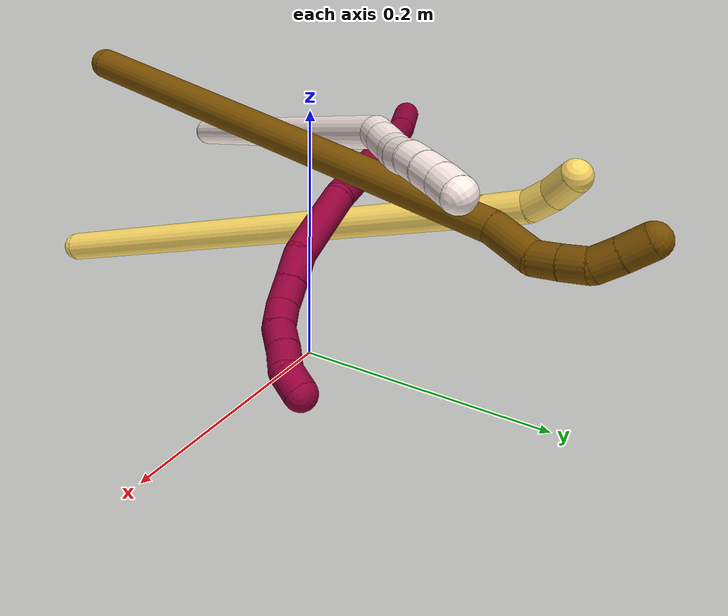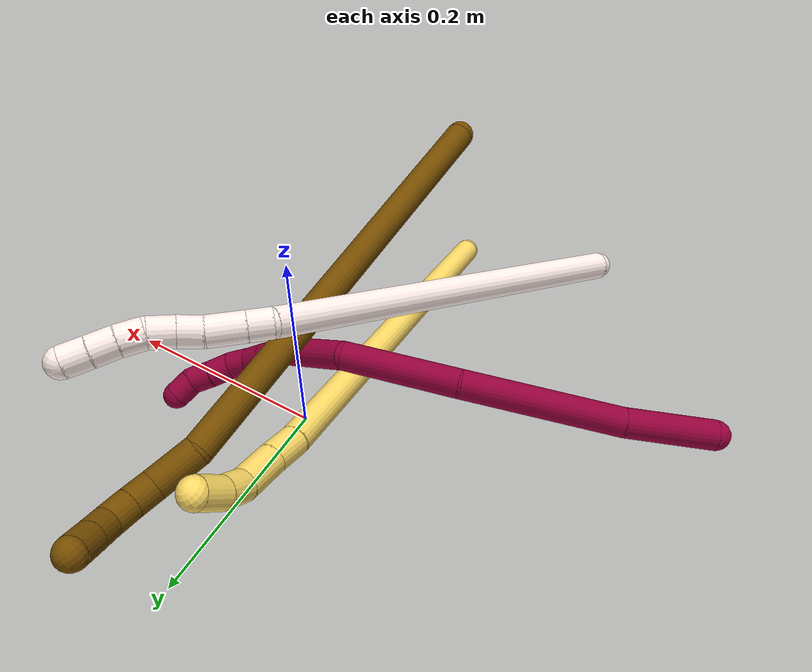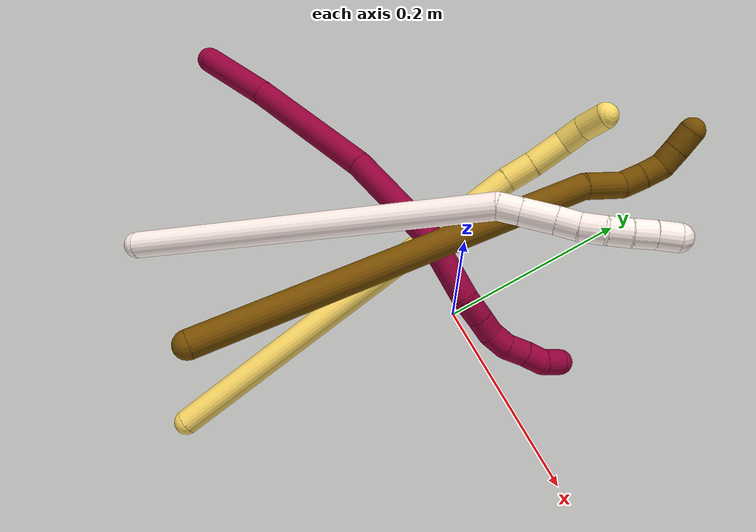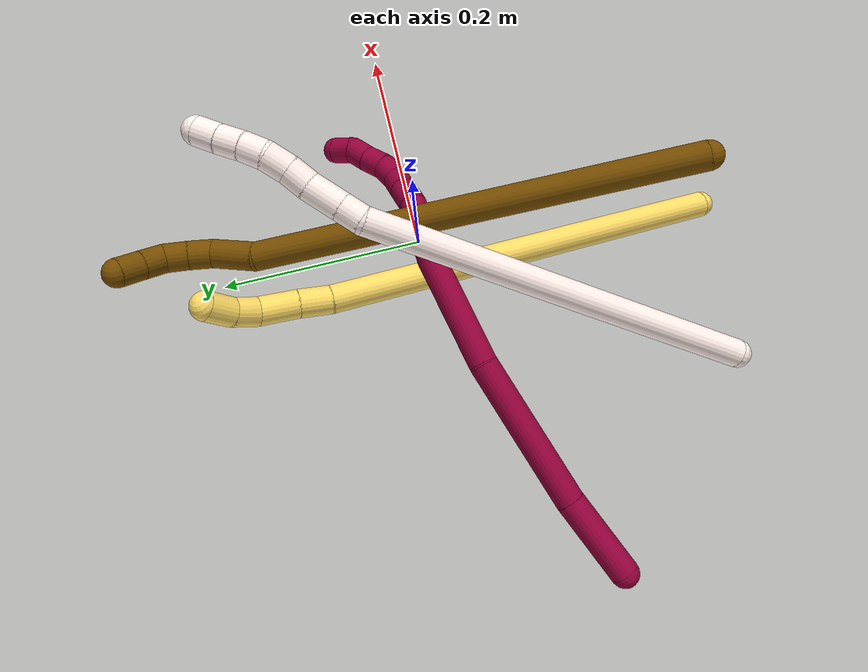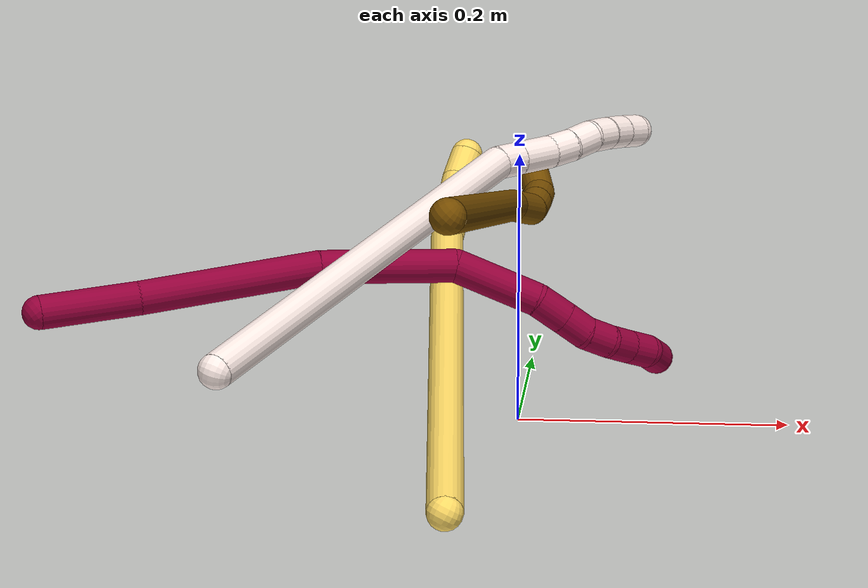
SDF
<sdf version="1.7">
 <world name="default">
  <model name="5">
   <static>0</static>
   <link name="5">
    <collision name="collision-cylinder-e_1_1_4">
     <pose>-0.015909 0.178076 0.077765 -1.15906 -0.08169 0.053483</pose>
     <geometry><cylinder><radius>0.0125</radius><length>0.389931</length></cylinder></geometry>
     <surface>
      <friction><ode><mu>1.16</mu><mu2>1.16</mu2><slip1>0</slip1><slip2>0</slip2></ode></friction>
      <contact><ode><kp>1e+06</kp><kd>1</kd><max_vel>0</max_vel><min_depth>0.001</min_depth></ode></contact>
     </surface>
    </collision>
    <visual name="visual-cylinder-e_1_1_4">
     <pose>-0.015909 0.178076 0.077765 -1.15906 -0.08169 0.053483</pose>
     <geometry><cylinder><radius>0.0125</radius><length>0.389931</length></cylinder></geometry>
     <material><ambient>1 0.858824 0.4 1</ambient></material>
    </visual>
    <collision name="collision-cylinder-e_2_4_5">
     <pose>-0.031624 0.368572 0.16208 -1.08551 0.013834 -0.008345</pose>
     <geometry><cylinder><radius>0.0125</radius><length>0.028086</length></cylinder></geometry>
     <surface>
      <friction><ode><mu>1.16</mu><mu2>1.16</mu2><slip1>0</slip1><slip2>0</slip2></ode></friction>
      <contact><ode><kp>1e+06</kp><kd>1</kd><max_vel>0</max_vel><min_depth>0.001</min_depth></ode></contact>
     </surface>
    </collision>
    <visual name="visual-cylinder-e_2_4_5">
     <pose>-0.031624 0.368572 0.16208 -1.08551 0.013834 -0.008345</pose>
     <geometry><cylinder><radius>0.0125</radius><length>0.028086</length></cylinder></geometry>
     <material><ambient>1 0.858824 0.4 1</ambient></material>
    </visual>
    <collision name="collision-cylinder-e_3_5_6">
     <pose>-0.032339 0.396334 0.176463 -1.09873 -0.052748 0.032299</pose>
     <geometry><cylinder><radius>0.0125</radius><length>0.034499</length></cylinder></geometry>
     <surface>
      <friction><ode><mu>1.16</mu><mu2>1.16</mu2><slip1>0</slip1><slip2>0</slip2></ode></friction>
      <contact><ode><kp>1e+06</kp><kd>1</kd><max_vel>0</max_vel><min_depth>0.001</min_depth></ode></contact>
     </surface>
    </collision>
    <visual name="visual-cylinder-e_3_5_6">
     <pose>-0.032339 0.396334 0.176463 -1.09873 -0.052748 0.032299</pose>
     <geometry><cylinder><radius>0.0125</radius><length>0.034499</length></cylinder></geometry>
     <material><ambient>1 0.858824 0.4 1</ambient></material>
    </visual>
    <collision name="collision-cylinder-e_4_6_7">
     <pose>-0.034776 0.419286 0.192524 -0.746407 -0.135442 0.053101</pose>
     <geometry><cylinder><radius>0.0125</radius><length>0.022623</length></cylinder></geometry>
     <surface>
      <friction><ode><mu>1.16</mu><mu2>1.16</mu2><slip1>0</slip1><slip2>0</slip2></ode></friction>
      <contact><ode><kp>1e+06</kp><kd>1</kd><max_vel>0</max_vel><min_depth>0.001</min_depth></ode></contact>
     </surface>
    </collision>
    <visual name="visual-cylinder-e_4_6_7">
     <pose>-0.034776 0.419286 0.192524 -0.746407 -0.135442 0.053101</pose>
     <geometry><cylinder><radius>0.0125</radius><length>0.022623</length></cylinder></geometry>
     <material><ambient>1 0.858824 0.4 1</ambient></material>
    </visual>
    <collision name="collision-cylinder-e_5_7_2">
     <pose>-0.036931 0.433065 0.211526 -0.520068 -0.050526 0.013446</pose>
     <geometry><cylinder><radius>0.0125</radius><length>0.024861</length></cylinder></geometry>
     <surface>
      <friction><ode><mu>1.16</mu><mu2>1.16</mu2><slip1>0</slip1><slip2>0</slip2></ode></friction>
      <contact><ode><kp>1e+06</kp><kd>1</kd><max_vel>0</max_vel><min_depth>0.001</min_depth></ode></contact>
     </surface>
    </collision>
    <visual name="visual-cylinder-e_5_7_2">
     <pose>-0.036931 0.433065 0.211526 -0.520068 -0.050526 0.013446</pose>
     <geometry><cylinder><radius>0.0125</radius><length>0.024861</length></cylinder></geometry>
     <material><ambient>1 0.858824 0.4 1</ambient></material>
    </visual>
    <collision name="collision-sphere-2">
     <pose>-0.037559 0.439235 0.222299 0 -0 0</pose>
     <geometry><sphere><radius>0.0125</radius></sphere></geometry>
     <surface>
      <friction><ode><mu>1.16</mu><mu2>1.16</mu2><slip1>0</slip1><slip2>0</slip2></ode></friction>
      <contact><ode><kp>1e+06</kp><kd>1</kd><max_vel>0</max_vel><min_depth>0.001</min_depth></ode></contact>
     </surface>
    </collision>
    <visual name="visual-sphere-2">
     <pose>-0.037559 0.439235 0.222299 0 -0 0</pose>
     <geometry><sphere><radius>0.0125</radius></sphere></geometry>
     <material><ambient>1 0.858824 0.4 1</ambient></material>
    </visual>
    <collision name="collision-sphere-7">
     <pose>-0.036303 0.426896 0.200752 0 -0 0</pose>
     <geometry><sphere><radius>0.0125</radius></sphere></geometry>
     <surface>
      <friction><ode><mu>1.16</mu><mu2>1.16</mu2><slip1>0</slip1><slip2>0</slip2></ode></friction>
      <contact><ode><kp>1e+06</kp><kd>1</kd><max_vel>0</max_vel><min_depth>0.001</min_depth></ode></contact>
     </surface>
    </collision>
    <visual name="visual-sphere-7">
     <pose>-0.036303 0.426896 0.200752 0 -0 0</pose>
     <geometry><sphere><radius>0.0125</radius></sphere></geometry>
     <material><ambient>1 0.858824 0.4 1</ambient></material>
    </visual>
    <collision name="collision-sphere-6">
     <pose>-0.033249 0.411676 0.184296 0 -0 0</pose>
     <geometry><sphere><radius>0.0125</radius></sphere></geometry>
     <surface>
      <friction><ode><mu>1.16</mu><mu2>1.16</mu2><slip1>0</slip1><slip2>0</slip2></ode></friction>
      <contact><ode><kp>1e+06</kp><kd>1</kd><max_vel>0</max_vel><min_depth>0.001</min_depth></ode></contact>
     </surface>
    </collision>
    <visual name="visual-sphere-6">
     <pose>-0.033249 0.411676 0.184296 0 -0 0</pose>
     <geometry><sphere><radius>0.0125</radius></sphere></geometry>
     <material><ambient>1 0.858824 0.4 1</ambient></material>
    </visual>
    <collision name="collision-sphere-5">
     <pose>-0.03143 0.380993 0.16863 0 -0 0</pose>
     <geometry><sphere><radius>0.0125</radius></sphere></geometry>
     <surface>
      <friction><ode><mu>1.16</mu><mu2>1.16</mu2><slip1>0</slip1><slip2>0</slip2></ode></friction>
      <contact><ode><kp>1e+06</kp><kd>1</kd><max_vel>0</max_vel><min_depth>0.001</min_depth></ode></contact>
     </surface>
    </collision>
    <visual name="visual-sphere-5">
     <pose>-0.03143 0.380993 0.16863 0 -0 0</pose>
     <geometry><sphere><radius>0.0125</radius></sphere></geometry>
     <material><ambient>1 0.858824 0.4 1</ambient></material>
    </visual>
    <collision name="collision-sphere-1">
     <geometry><sphere><radius>0.0125</radius></sphere></geometry>
     <surface>
      <friction><ode><mu>1.16</mu><mu2>1.16</mu2><slip1>0</slip1><slip2>0</slip2></ode></friction>
      <contact><ode><kp>1e+06</kp><kd>1</kd><max_vel>0</max_vel><min_depth>0.001</min_depth></ode></contact>
     </surface>
    </collision>
    <visual name="visual-sphere-1">
     <geometry><sphere><radius>0.0125</radius></sphere></geometry>
     <material><ambient>1 0.858824 0.4 1</ambient></material>
    </visual>
    <collision name="collision-sphere-4">
     <pose>-0.031818 0.356152 0.15553 0 -0 0</pose>
     <geometry><sphere><radius>0.0125</radius></sphere></geometry>
     <surface>
      <friction><ode><mu>1.16</mu><mu2>1.16</mu2><slip1>0</slip1><slip2>0</slip2></ode></friction>
      <contact><ode><kp>1e+06</kp><kd>1</kd><max_vel>0</max_vel><min_depth>0.001</min_depth></ode></contact>
     </surface>
    </collision>
    <visual name="visual-sphere-4">
     <pose>-0.031818 0.356152 0.15553 0 -0 0</pose>
     <geometry><sphere><radius>0.0125</radius></sphere></geometry>
     <material><ambient>1 0.858824 0.4 1</ambient></material>
    </visual>
    <inertial>
     <pose>-0.019824 0.227428 0.101155 0 -0 0</pose>
     <mass>0.5</mass>
     <inertia>
      <ixx>0.005205</ixx>
      <ixy>0</ixy>
      <ixz>0</ixz>
      <iyy>0.002306</iyy>
      <iyz>0</iyz>
      <izz>-0.004113</izz>
     </inertia>
    </inertial>
   </link>
   <pose>-0.030794 -0.285008 0.011486 -0.13774 0.491656 0.137658</pose>
  </model>
  <model name="8">
   <static>0</static>
   <link name="8">
    <collision name="collision-cylinder-e_1_1_4">
     <pose>0.01712 -0.003471 -0.032153 3.03405 0.486865 2.71477</pose>
     <geometry><cylinder><radius>0.0125</radius><length>0.073183</length></cylinder></geometry>
     <surface>
      <friction><ode><mu>1.16</mu><mu2>1.16</mu2><slip1>0</slip1><slip2>0</slip2></ode></friction>
      <contact><ode><kp>1e+06</kp><kd>1</kd><max_vel>0</max_vel><min_depth>0.001</min_depth></ode></contact>
     </surface>
    </collision>
    <visual name="visual-cylinder-e_1_1_4">
     <pose>0.01712 -0.003471 -0.032153 3.03405 0.486865 2.71477</pose>
     <geometry><cylinder><radius>0.0125</radius><length>0.073183</length></cylinder></geometry>
     <material><ambient>0.584314 0 0.227451 1</ambient></material>
    </visual>
    <collision name="collision-cylinder-e_2_4_5">
     <pose>0.064573 -0.007056 -0.124447 3.13969 0.46714 3.13361</pose>
     <geometry><cylinder><radius>0.0125</radius><length>0.134715</length></cylinder></geometry>
     <surface>
      <friction><ode><mu>1.16</mu><mu2>1.16</mu2><slip1>0</slip1><slip2>0</slip2></ode></friction>
      <contact><ode><kp>1e+06</kp><kd>1</kd><max_vel>0</max_vel><min_depth>0.001</min_depth></ode></contact>
     </surface>
    </collision>
    <visual name="visual-cylinder-e_2_4_5">
     <pose>0.064573 -0.007056 -0.124447 3.13969 0.46714 3.13361</pose>
     <geometry><cylinder><radius>0.0125</radius><length>0.134715</length></cylinder></geometry>
     <material><ambient>0.584314 0 0.227451 1</ambient></material>
    </visual>
    <collision name="collision-cylinder-e_3_5_6">
     <pose>0.124472 -0.003503 -0.225073 -3.05124 0.628814 -2.86532</pose>
     <geometry><cylinder><radius>0.0125</radius><length>0.100531</length></cylinder></geometry>
     <surface>
      <friction><ode><mu>1.16</mu><mu2>1.16</mu2><slip1>0</slip1><slip2>0</slip2></ode></friction>
      <contact><ode><kp>1e+06</kp><kd>1</kd><max_vel>0</max_vel><min_depth>0.001</min_depth></ode></contact>
     </surface>
    </collision>
    <visual name="visual-cylinder-e_3_5_6">
     <pose>0.124472 -0.003503 -0.225073 -3.05124 0.628814 -2.86532</pose>
     <geometry><cylinder><radius>0.0125</radius><length>0.100531</length></cylinder></geometry>
     <material><ambient>0.584314 0 0.227451 1</ambient></material>
    </visual>
    <collision name="collision-cylinder-e_4_6_7">
     <pose>0.182064 0.003477 -0.281874 -2.94131 1.03478 -2.79209</pose>
     <geometry><cylinder><radius>0.0125</radius><length>0.065198</length></cylinder></geometry>
     <surface>
      <friction><ode><mu>1.16</mu><mu2>1.16</mu2><slip1>0</slip1><slip2>0</slip2></ode></friction>
      <contact><ode><kp>1e+06</kp><kd>1</kd><max_vel>0</max_vel><min_depth>0.001</min_depth></ode></contact>
     </surface>
    </collision>
    <visual name="visual-cylinder-e_4_6_7">
     <pose>0.182064 0.003477 -0.281874 -2.94131 1.03478 -2.79209</pose>
     <geometry><cylinder><radius>0.0125</radius><length>0.065198</length></cylinder></geometry>
     <material><ambient>0.584314 0 0.227451 1</ambient></material>
    </visual>
    <collision name="collision-cylinder-e_5_7_8">
     <pose>0.221631 0.005241 -0.302655 2.80774 1.18208 2.64959</pose>
     <geometry><cylinder><radius>0.0125</radius><length>0.02494</length></cylinder></geometry>
     <surface>
      <friction><ode><mu>1.16</mu><mu2>1.16</mu2><slip1>0</slip1><slip2>0</slip2></ode></friction>
      <contact><ode><kp>1e+06</kp><kd>1</kd><max_vel>0</max_vel><min_depth>0.001</min_depth></ode></contact>
     </surface>
    </collision>
    <visual name="visual-cylinder-e_5_7_8">
     <pose>0.221631 0.005241 -0.302655 2.80774 1.18208 2.64959</pose>
     <geometry><cylinder><radius>0.0125</radius><length>0.02494</length></cylinder></geometry>
     <material><ambient>0.584314 0 0.227451 1</ambient></material>
    </visual>
    <collision name="collision-cylinder-e_6_8_9">
     <pose>0.242899 0.002548 -0.310714 2.83331 1.20097 2.6954</pose>
     <geometry><cylinder><radius>0.0125</radius><length>0.020869</length></cylinder></geometry>
     <surface>
      <friction><ode><mu>1.16</mu><mu2>1.16</mu2><slip1>0</slip1><slip2>0</slip2></ode></friction>
      <contact><ode><kp>1e+06</kp><kd>1</kd><max_vel>0</max_vel><min_depth>0.001</min_depth></ode></contact>
     </surface>
    </collision>
    <visual name="visual-cylinder-e_6_8_9">
     <pose>0.242899 0.002548 -0.310714 2.83331 1.20097 2.6954</pose>
     <geometry><cylinder><radius>0.0125</radius><length>0.020869</length></cylinder></geometry>
     <material><ambient>0.584314 0 0.227451 1</ambient></material>
    </visual>
    <collision name="collision-cylinder-e_7_9_10">
     <pose>0.260593 -0.001036 -0.320024 2.73827 0.908231 2.34836</pose>
     <geometry><cylinder><radius>0.0125</radius><length>0.020206</length></cylinder></geometry>
     <surface>
      <friction><ode><mu>1.16</mu><mu2>1.16</mu2><slip1>0</slip1><slip2>0</slip2></ode></friction>
      <contact><ode><kp>1e+06</kp><kd>1</kd><max_vel>0</max_vel><min_depth>0.001</min_depth></ode></contact>
     </surface>
    </collision>
    <visual name="visual-cylinder-e_7_9_10">
     <pose>0.260593 -0.001036 -0.320024 2.73827 0.908231 2.34836</pose>
     <geometry><cylinder><radius>0.0125</radius><length>0.020206</length></cylinder></geometry>
     <material><ambient>0.584314 0 0.227451 1</ambient></material>
    </visual>
    <collision name="collision-cylinder-e_8_10_11">
     <pose>0.27496 -0.008692 -0.331692 2.42189 0.680054 1.50926</pose>
     <geometry><cylinder><radius>0.0125</radius><length>0.020358</length></cylinder></geometry>
     <surface>
      <friction><ode><mu>1.16</mu><mu2>1.16</mu2><slip1>0</slip1><slip2>0</slip2></ode></friction>
      <contact><ode><kp>1e+06</kp><kd>1</kd><max_vel>0</max_vel><min_depth>0.001</min_depth></ode></contact>
     </surface>
    </collision>
    <visual name="visual-cylinder-e_8_10_11">
     <pose>0.27496 -0.008692 -0.331692 2.42189 0.680054 1.50926</pose>
     <geometry><cylinder><radius>0.0125</radius><length>0.020358</length></cylinder></geometry>
     <material><ambient>0.584314 0 0.227451 1</ambient></material>
    </visual>
    <collision name="collision-cylinder-e_9_11_12">
     <pose>0.287942 -0.018247 -0.343797 2.5275 0.718358 1.73903</pose>
     <geometry><cylinder><radius>0.0125</radius><length>0.02</length></cylinder></geometry>
     <surface>
      <friction><ode><mu>1.16</mu><mu2>1.16</mu2><slip1>0</slip1><slip2>0</slip2></ode></friction>
      <contact><ode><kp>1e+06</kp><kd>1</kd><max_vel>0</max_vel><min_depth>0.001</min_depth></ode></contact>
     </surface>
    </collision>
    <visual name="visual-cylinder-e_9_11_12">
     <pose>0.287942 -0.018247 -0.343797 2.5275 0.718358 1.73903</pose>
     <geometry><cylinder><radius>0.0125</radius><length>0.02</length></cylinder></geometry>
     <material><ambient>0.584314 0 0.227451 1</ambient></material>
    </visual>
    <collision name="collision-cylinder-e_10_12_2">
     <pose>0.299537 -0.030477 -0.353498 1.99324 0.525153 0.787609</pose>
     <geometry><cylinder><radius>0.0125</radius><length>0.02</length></cylinder></geometry>
     <surface>
      <friction><ode><mu>1.16</mu><mu2>1.16</mu2><slip1>0</slip1><slip2>0</slip2></ode></friction>
      <contact><ode><kp>1e+06</kp><kd>1</kd><max_vel>0</max_vel><min_depth>0.001</min_depth></ode></contact>
     </surface>
    </collision>
    <visual name="visual-cylinder-e_10_12_2">
     <pose>0.299537 -0.030477 -0.353498 1.99324 0.525153 0.787609</pose>
     <geometry><cylinder><radius>0.0125</radius><length>0.02</length></cylinder></geometry>
     <material><ambient>0.584314 0 0.227451 1</ambient></material>
    </visual>
    <collision name="collision-sphere-2">
     <pose>0.30455 -0.038369 -0.357045 0 -0 0</pose>
     <geometry><sphere><radius>0.0125</radius></sphere></geometry>
     <surface>
      <friction><ode><mu>1.16</mu><mu2>1.16</mu2><slip1>0</slip1><slip2>0</slip2></ode></friction>
      <contact><ode><kp>1e+06</kp><kd>1</kd><max_vel>0</max_vel><min_depth>0.001</min_depth></ode></contact>
     </surface>
    </collision>
    <visual name="visual-sphere-2">
     <pose>0.30455 -0.038369 -0.357045 0 -0 0</pose>
     <geometry><sphere><radius>0.0125</radius></sphere></geometry>
     <material><ambient>0.584314 0 0.227451 1</ambient></material>
    </visual>
    <collision name="collision-sphere-12">
     <pose>0.294524 -0.022585 -0.34995 0 -0 0</pose>
     <geometry><sphere><radius>0.0125</radius></sphere></geometry>
     <surface>
      <friction><ode><mu>1.16</mu><mu2>1.16</mu2><slip1>0</slip1><slip2>0</slip2></ode></friction>
      <contact><ode><kp>1e+06</kp><kd>1</kd><max_vel>0</max_vel><min_depth>0.001</min_depth></ode></contact>
     </surface>
    </collision>
    <visual name="visual-sphere-12">
     <pose>0.294524 -0.022585 -0.34995 0 -0 0</pose>
     <geometry><sphere><radius>0.0125</radius></sphere></geometry>
     <material><ambient>0.584314 0 0.227451 1</ambient></material>
    </visual>
    <collision name="collision-sphere-11">
     <pose>0.281361 -0.013909 -0.337644 0 -0 0</pose>
     <geometry><sphere><radius>0.0125</radius></sphere></geometry>
     <surface>
      <friction><ode><mu>1.16</mu><mu2>1.16</mu2><slip1>0</slip1><slip2>0</slip2></ode></friction>
      <contact><ode><kp>1e+06</kp><kd>1</kd><max_vel>0</max_vel><min_depth>0.001</min_depth></ode></contact>
     </surface>
    </collision>
    <visual name="visual-sphere-11">
     <pose>0.281361 -0.013909 -0.337644 0 -0 0</pose>
     <geometry><sphere><radius>0.0125</radius></sphere></geometry>
     <material><ambient>0.584314 0 0.227451 1</ambient></material>
    </visual>
    <collision name="collision-sphere-10">
     <pose>0.268559 -0.003475 -0.32574 0 -0 0</pose>
     <geometry><sphere><radius>0.0125</radius></sphere></geometry>
     <surface>
      <friction><ode><mu>1.16</mu><mu2>1.16</mu2><slip1>0</slip1><slip2>0</slip2></ode></friction>
      <contact><ode><kp>1e+06</kp><kd>1</kd><max_vel>0</max_vel><min_depth>0.001</min_depth></ode></contact>
     </surface>
    </collision>
    <visual name="visual-sphere-10">
     <pose>0.268559 -0.003475 -0.32574 0 -0 0</pose>
     <geometry><sphere><radius>0.0125</radius></sphere></geometry>
     <material><ambient>0.584314 0 0.227451 1</ambient></material>
    </visual>
    <collision name="collision-sphere-9">
     <pose>0.252628 0.001404 -0.314308 0 -0 0</pose>
     <geometry><sphere><radius>0.0125</radius></sphere></geometry>
     <surface>
      <friction><ode><mu>1.16</mu><mu2>1.16</mu2><slip1>0</slip1><slip2>0</slip2></ode></friction>
      <contact><ode><kp>1e+06</kp><kd>1</kd><max_vel>0</max_vel><min_depth>0.001</min_depth></ode></contact>
     </surface>
    </collision>
    <visual name="visual-sphere-9">
     <pose>0.252628 0.001404 -0.314308 0 -0 0</pose>
     <geometry><sphere><radius>0.0125</radius></sphere></geometry>
     <material><ambient>0.584314 0 0.227451 1</ambient></material>
    </visual>
    <collision name="collision-sphere-4">
     <pose>0.034239 -0.006942 -0.064306 0 -0 0</pose>
     <geometry><sphere><radius>0.0125</radius></sphere></geometry>
     <surface>
      <friction><ode><mu>1.16</mu><mu2>1.16</mu2><slip1>0</slip1><slip2>0</slip2></ode></friction>
      <contact><ode><kp>1e+06</kp><kd>1</kd><max_vel>0</max_vel><min_depth>0.001</min_depth></ode></contact>
     </surface>
    </collision>
    <visual name="visual-sphere-4">
     <pose>0.034239 -0.006942 -0.064306 0 -0 0</pose>
     <geometry><sphere><radius>0.0125</radius></sphere></geometry>
     <material><ambient>0.584314 0 0.227451 1</ambient></material>
    </visual>
    <collision name="collision-sphere-1">
     <geometry><sphere><radius>0.0125</radius></sphere></geometry>
     <surface>
      <friction><ode><mu>1.16</mu><mu2>1.16</mu2><slip1>0</slip1><slip2>0</slip2></ode></friction>
      <contact><ode><kp>1e+06</kp><kd>1</kd><max_vel>0</max_vel><min_depth>0.001</min_depth></ode></contact>
     </surface>
    </collision>
    <visual name="visual-sphere-1">
     <geometry><sphere><radius>0.0125</radius></sphere></geometry>
     <material><ambient>0.584314 0 0.227451 1</ambient></material>
    </visual>
    <collision name="collision-sphere-8">
     <pose>0.23317 0.003692 -0.30712 0 -0 0</pose>
     <geometry><sphere><radius>0.0125</radius></sphere></geometry>
     <surface>
      <friction><ode><mu>1.16</mu><mu2>1.16</mu2><slip1>0</slip1><slip2>0</slip2></ode></friction>
      <contact><ode><kp>1e+06</kp><kd>1</kd><max_vel>0</max_vel><min_depth>0.001</min_depth></ode></contact>
     </surface>
    </collision>
    <visual name="visual-sphere-8">
     <pose>0.23317 0.003692 -0.30712 0 -0 0</pose>
     <geometry><sphere><radius>0.0125</radius></sphere></geometry>
     <material><ambient>0.584314 0 0.227451 1</ambient></material>
    </visual>
    <collision name="collision-sphere-5">
     <pose>0.094906 -0.007171 -0.184588 0 -0 0</pose>
     <geometry><sphere><radius>0.0125</radius></sphere></geometry>
     <surface>
      <friction><ode><mu>1.16</mu><mu2>1.16</mu2><slip1>0</slip1><slip2>0</slip2></ode></friction>
      <contact><ode><kp>1e+06</kp><kd>1</kd><max_vel>0</max_vel><min_depth>0.001</min_depth></ode></contact>
     </surface>
    </collision>
    <visual name="visual-sphere-5">
     <pose>0.094906 -0.007171 -0.184588 0 -0 0</pose>
     <geometry><sphere><radius>0.0125</radius></sphere></geometry>
     <material><ambient>0.584314 0 0.227451 1</ambient></material>
    </visual>
    <collision name="collision-sphere-6">
     <pose>0.154037 0.000165 -0.265558 0 -0 0</pose>
     <geometry><sphere><radius>0.0125</radius></sphere></geometry>
     <surface>
      <friction><ode><mu>1.16</mu><mu2>1.16</mu2><slip1>0</slip1><slip2>0</slip2></ode></friction>
      <contact><ode><kp>1e+06</kp><kd>1</kd><max_vel>0</max_vel><min_depth>0.001</min_depth></ode></contact>
     </surface>
    </collision>
    <visual name="visual-sphere-6">
     <pose>0.154037 0.000165 -0.265558 0 -0 0</pose>
     <geometry><sphere><radius>0.0125</radius></sphere></geometry>
     <material><ambient>0.584314 0 0.227451 1</ambient></material>
    </visual>
    <collision name="collision-sphere-7">
     <pose>0.210091 0.00679 -0.29819 0 -0 0</pose>
     <geometry><sphere><radius>0.0125</radius></sphere></geometry>
     <surface>
      <friction><ode><mu>1.16</mu><mu2>1.16</mu2><slip1>0</slip1><slip2>0</slip2></ode></friction>
      <contact><ode><kp>1e+06</kp><kd>1</kd><max_vel>0</max_vel><min_depth>0.001</min_depth></ode></contact>
     </surface>
    </collision>
    <visual name="visual-sphere-7">
     <pose>0.210091 0.00679 -0.29819 0 -0 0</pose>
     <geometry><sphere><radius>0.0125</radius></sphere></geometry>
     <material><ambient>0.584314 0 0.227451 1</ambient></material>
    </visual>
    <inertial>
     <pose>0.135089 -0.004637 -0.202639 0 -0 0</pose>
     <mass>0.5</mass>
     <inertia>
      <ixx>-0.000279</ixx>
      <ixy>0</ixy>
      <ixz>0</ixz>
      <iyy>0.000351</iyy>
      <iyz>0</iyz>
      <izz>-0.000222</izz>
     </inertia>
    </inertial>
   </link>
   <pose>-0.337891 -0.097997 0.096809 2.66917 0.92171 -0.09179</pose>
  </model>
  <model name="11">
   <static>0</static>
   <link name="11">
    <collision name="collision-cylinder-e_1_1_4">
     <pose>0.000906 0.171107 0.028857 -1.40372 0.005223 -0.004416</pose>
     <geometry><cylinder><radius>0.0125</radius><length>0.347052</length></cylinder></geometry>
     <surface>
      <friction><ode><mu>1.16</mu><mu2>1.16</mu2><slip1>0</slip1><slip2>0</slip2></ode></friction>
      <contact><ode><kp>1e+06</kp><kd>1</kd><max_vel>0</max_vel><min_depth>0.001</min_depth></ode></contact>
     </surface>
    </collision>
    <visual name="visual-cylinder-e_1_1_4">
     <pose>0.000906 0.171107 0.028857 -1.40372 0.005223 -0.004416</pose>
     <geometry><cylinder><radius>0.0125</radius><length>0.347052</length></cylinder></geometry>
     <material><ambient>1 0.933333 0.909804 1</ambient></material>
    </visual>
    <collision name="collision-cylinder-e_2_4_5">
     <pose>0.002767 0.350965 0.062544 -1.06634 0.095156 -0.056187</pose>
     <geometry><cylinder><radius>0.0125</radius><length>0.020081</length></cylinder></geometry>
     <surface>
      <friction><ode><mu>1.16</mu><mu2>1.16</mu2><slip1>0</slip1><slip2>0</slip2></ode></friction>
      <contact><ode><kp>1e+06</kp><kd>1</kd><max_vel>0</max_vel><min_depth>0.001</min_depth></ode></contact>
     </surface>
    </collision>
    <visual name="visual-cylinder-e_2_4_5">
     <pose>0.002767 0.350965 0.062544 -1.06634 0.095156 -0.056187</pose>
     <geometry><cylinder><radius>0.0125</radius><length>0.020081</length></cylinder></geometry>
     <material><ambient>1 0.933333 0.909804 1</ambient></material>
    </visual>
    <collision name="collision-cylinder-e_3_5_6">
     <pose>0.005201 0.373242 0.074842 -1.06641 0.09551 -0.056401</pose>
     <geometry><cylinder><radius>0.0125</radius><length>0.031044</length></cylinder></geometry>
     <surface>
      <friction><ode><mu>1.16</mu><mu2>1.16</mu2><slip1>0</slip1><slip2>0</slip2></ode></friction>
      <contact><ode><kp>1e+06</kp><kd>1</kd><max_vel>0</max_vel><min_depth>0.001</min_depth></ode></contact>
     </surface>
    </collision>
    <visual name="visual-cylinder-e_3_5_6">
     <pose>0.005201 0.373242 0.074842 -1.06641 0.09551 -0.056401</pose>
     <geometry><cylinder><radius>0.0125</radius><length>0.031044</length></cylinder></geometry>
     <material><ambient>1 0.933333 0.909804 1</ambient></material>
    </visual>
    <collision name="collision-cylinder-e_4_6_7">
     <pose>0.006283 0.395436 0.087568 -1.02545 -0.039232 0.022087</pose>
     <geometry><cylinder><radius>0.0125</radius><length>0.020292</length></cylinder></geometry>
     <surface>
      <friction><ode><mu>1.16</mu><mu2>1.16</mu2><slip1>0</slip1><slip2>0</slip2></ode></friction>
      <contact><ode><kp>1e+06</kp><kd>1</kd><max_vel>0</max_vel><min_depth>0.001</min_depth></ode></contact>
     </surface>
    </collision>
    <visual name="visual-cylinder-e_4_6_7">
     <pose>0.006283 0.395436 0.087568 -1.02545 -0.039232 0.022087</pose>
     <geometry><cylinder><radius>0.0125</radius><length>0.020292</length></cylinder></geometry>
     <material><ambient>1 0.933333 0.909804 1</ambient></material>
    </visual>
    <collision name="collision-cylinder-e_5_7_8">
     <pose>0.005579 0.413959 0.097083 -1.16306 -0.028499 0.018735</pose>
     <geometry><cylinder><radius>0.0125</radius><length>0.021478</length></cylinder></geometry>
     <surface>
      <friction><ode><mu>1.16</mu><mu2>1.16</mu2><slip1>0</slip1><slip2>0</slip2></ode></friction>
      <contact><ode><kp>1e+06</kp><kd>1</kd><max_vel>0</max_vel><min_depth>0.001</min_depth></ode></contact>
     </surface>
    </collision>
    <visual name="visual-cylinder-e_5_7_8">
     <pose>0.005579 0.413959 0.097083 -1.16306 -0.028499 0.018735</pose>
     <geometry><cylinder><radius>0.0125</radius><length>0.021478</length></cylinder></geometry>
     <material><ambient>1 0.933333 0.909804 1</ambient></material>
    </visual>
    <collision name="collision-cylinder-e_6_8_9">
     <pose>0.007445 0.432957 0.104825 -1.20668 0.218378 -0.150788</pose>
     <geometry><cylinder><radius>0.0125</radius><length>0.020047</length></cylinder></geometry>
     <surface>
      <friction><ode><mu>1.16</mu><mu2>1.16</mu2><slip1>0</slip1><slip2>0</slip2></ode></friction>
      <contact><ode><kp>1e+06</kp><kd>1</kd><max_vel>0</max_vel><min_depth>0.001</min_depth></ode></contact>
     </surface>
    </collision>
    <visual name="visual-cylinder-e_6_8_9">
     <pose>0.007445 0.432957 0.104825 -1.20668 0.218378 -0.150788</pose>
     <geometry><cylinder><radius>0.0125</radius><length>0.020047</length></cylinder></geometry>
     <material><ambient>1 0.933333 0.909804 1</ambient></material>
    </visual>
    <collision name="collision-cylinder-e_7_9_10">
     <pose>0.012535 0.451158 0.111383 -1.24367 0.296189 -0.21303</pose>
     <geometry><cylinder><radius>0.0125</radius><length>0.020001</length></cylinder></geometry>
     <surface>
      <friction><ode><mu>1.16</mu><mu2>1.16</mu2><slip1>0</slip1><slip2>0</slip2></ode></friction>
      <contact><ode><kp>1e+06</kp><kd>1</kd><max_vel>0</max_vel><min_depth>0.001</min_depth></ode></contact>
     </surface>
    </collision>
    <visual name="visual-cylinder-e_7_9_10">
     <pose>0.012535 0.451158 0.111383 -1.24367 0.296189 -0.21303</pose>
     <geometry><cylinder><radius>0.0125</radius><length>0.020001</length></cylinder></geometry>
     <material><ambient>1 0.933333 0.909804 1</ambient></material>
    </visual>
    <collision name="collision-cylinder-e_8_10_2">
     <pose>0.018434 0.469071 0.118029 -1.1873 0.302471 -0.204974</pose>
     <geometry><cylinder><radius>0.0125</radius><length>0.020006</length></cylinder></geometry>
     <surface>
      <friction><ode><mu>1.16</mu><mu2>1.16</mu2><slip1>0</slip1><slip2>0</slip2></ode></friction>
      <contact><ode><kp>1e+06</kp><kd>1</kd><max_vel>0</max_vel><min_depth>0.001</min_depth></ode></contact>
     </surface>
    </collision>
    <visual name="visual-cylinder-e_8_10_2">
     <pose>0.018434 0.469071 0.118029 -1.1873 0.302471 -0.204974</pose>
     <geometry><cylinder><radius>0.0125</radius><length>0.020006</length></cylinder></geometry>
     <material><ambient>1 0.933333 0.909804 1</ambient></material>
    </visual>
    <collision name="collision-sphere-2">
     <pose>0.021414 0.477927 0.121602 0 -0 0</pose>
     <geometry><sphere><radius>0.0125</radius></sphere></geometry>
     <surface>
      <friction><ode><mu>1.16</mu><mu2>1.16</mu2><slip1>0</slip1><slip2>0</slip2></ode></friction>
      <contact><ode><kp>1e+06</kp><kd>1</kd><max_vel>0</max_vel><min_depth>0.001</min_depth></ode></contact>
     </surface>
    </collision>
    <visual name="visual-sphere-2">
     <pose>0.021414 0.477927 0.121602 0 -0 0</pose>
     <geometry><sphere><radius>0.0125</radius></sphere></geometry>
     <material><ambient>1 0.933333 0.909804 1</ambient></material>
    </visual>
    <collision name="collision-sphere-10">
     <pose>0.015454 0.460216 0.114456 0 -0 0</pose>
     <geometry><sphere><radius>0.0125</radius></sphere></geometry>
     <surface>
      <friction><ode><mu>1.16</mu><mu2>1.16</mu2><slip1>0</slip1><slip2>0</slip2></ode></friction>
      <contact><ode><kp>1e+06</kp><kd>1</kd><max_vel>0</max_vel><min_depth>0.001</min_depth></ode></contact>
     </surface>
    </collision>
    <visual name="visual-sphere-10">
     <pose>0.015454 0.460216 0.114456 0 -0 0</pose>
     <geometry><sphere><radius>0.0125</radius></sphere></geometry>
     <material><ambient>1 0.933333 0.909804 1</ambient></material>
    </visual>
    <collision name="collision-sphere-9">
     <pose>0.009616 0.442101 0.10831 0 -0 0</pose>
     <geometry><sphere><radius>0.0125</radius></sphere></geometry>
     <surface>
      <friction><ode><mu>1.16</mu><mu2>1.16</mu2><slip1>0</slip1><slip2>0</slip2></ode></friction>
      <contact><ode><kp>1e+06</kp><kd>1</kd><max_vel>0</max_vel><min_depth>0.001</min_depth></ode></contact>
     </surface>
    </collision>
    <visual name="visual-sphere-9">
     <pose>0.009616 0.442101 0.10831 0 -0 0</pose>
     <geometry><sphere><radius>0.0125</radius></sphere></geometry>
     <material><ambient>1 0.933333 0.909804 1</ambient></material>
    </visual>
    <collision name="collision-sphere-4">
     <pose>0.001813 0.342215 0.057713 0 -0 0</pose>
     <geometry><sphere><radius>0.0125</radius></sphere></geometry>
     <surface>
      <friction><ode><mu>1.16</mu><mu2>1.16</mu2><slip1>0</slip1><slip2>0</slip2></ode></friction>
      <contact><ode><kp>1e+06</kp><kd>1</kd><max_vel>0</max_vel><min_depth>0.001</min_depth></ode></contact>
     </surface>
    </collision>
    <visual name="visual-sphere-4">
     <pose>0.001813 0.342215 0.057713 0 -0 0</pose>
     <geometry><sphere><radius>0.0125</radius></sphere></geometry>
     <material><ambient>1 0.933333 0.909804 1</ambient></material>
    </visual>
    <collision name="collision-sphere-1">
     <geometry><sphere><radius>0.0125</radius></sphere></geometry>
     <surface>
      <friction><ode><mu>1.16</mu><mu2>1.16</mu2><slip1>0</slip1><slip2>0</slip2></ode></friction>
      <contact><ode><kp>1e+06</kp><kd>1</kd><max_vel>0</max_vel><min_depth>0.001</min_depth></ode></contact>
     </surface>
    </collision>
    <visual name="visual-sphere-1">
     <geometry><sphere><radius>0.0125</radius></sphere></geometry>
     <material><ambient>1 0.933333 0.909804 1</ambient></material>
    </visual>
    <collision name="collision-sphere-8">
     <pose>0.005273 0.423813 0.10134 0 -0 0</pose>
     <geometry><sphere><radius>0.0125</radius></sphere></geometry>
     <surface>
      <friction><ode><mu>1.16</mu><mu2>1.16</mu2><slip1>0</slip1><slip2>0</slip2></ode></friction>
      <contact><ode><kp>1e+06</kp><kd>1</kd><max_vel>0</max_vel><min_depth>0.001</min_depth></ode></contact>
     </surface>
    </collision>
    <visual name="visual-sphere-8">
     <pose>0.005273 0.423813 0.10134 0 -0 0</pose>
     <geometry><sphere><radius>0.0125</radius></sphere></geometry>
     <material><ambient>1 0.933333 0.909804 1</ambient></material>
    </visual>
    <collision name="collision-sphere-5">
     <pose>0.003721 0.359715 0.067375 0 -0 0</pose>
     <geometry><sphere><radius>0.0125</radius></sphere></geometry>
     <surface>
      <friction><ode><mu>1.16</mu><mu2>1.16</mu2><slip1>0</slip1><slip2>0</slip2></ode></friction>
      <contact><ode><kp>1e+06</kp><kd>1</kd><max_vel>0</max_vel><min_depth>0.001</min_depth></ode></contact>
     </surface>
    </collision>
    <visual name="visual-sphere-5">
     <pose>0.003721 0.359715 0.067375 0 -0 0</pose>
     <geometry><sphere><radius>0.0125</radius></sphere></geometry>
     <material><ambient>1 0.933333 0.909804 1</ambient></material>
    </visual>
    <collision name="collision-sphere-6">
     <pose>0.006681 0.386769 0.082309 0 -0 0</pose>
     <geometry><sphere><radius>0.0125</radius></sphere></geometry>
     <surface>
      <friction><ode><mu>1.16</mu><mu2>1.16</mu2><slip1>0</slip1><slip2>0</slip2></ode></friction>
      <contact><ode><kp>1e+06</kp><kd>1</kd><max_vel>0</max_vel><min_depth>0.001</min_depth></ode></contact>
     </surface>
    </collision>
    <visual name="visual-sphere-6">
     <pose>0.006681 0.386769 0.082309 0 -0 0</pose>
     <geometry><sphere><radius>0.0125</radius></sphere></geometry>
     <material><ambient>1 0.933333 0.909804 1</ambient></material>
    </visual>
    <collision name="collision-sphere-7">
     <pose>0.005885 0.404104 0.092827 0 -0 0</pose>
     <geometry><sphere><radius>0.0125</radius></sphere></geometry>
     <surface>
      <friction><ode><mu>1.16</mu><mu2>1.16</mu2><slip1>0</slip1><slip2>0</slip2></ode></friction>
      <contact><ode><kp>1e+06</kp><kd>1</kd><max_vel>0</max_vel><min_depth>0.001</min_depth></ode></contact>
     </surface>
    </collision>
    <visual name="visual-sphere-7">
     <pose>0.005885 0.404104 0.092827 0 -0 0</pose>
     <geometry><sphere><radius>0.0125</radius></sphere></geometry>
     <material><ambient>1 0.933333 0.909804 1</ambient></material>
    </visual>
    <inertial>
     <pose>0.003095 0.24404 0.048293 0 -0 0</pose>
     <mass>0.5</mass>
     <inertia>
      <ixx>0.003494</ixx>
      <ixy>0</ixy>
      <ixz>0</ixz>
      <iyy>0.000608</iyy>
      <iyz>0</iyz>
      <izz>-0.00347</izz>
     </inertia>
    </inertial>
   </link>
   <pose>-0.185553 -0.245048 0.092556 2.29033 1.11975 1.98366</pose>
  </model>
  <model name="12">
   <static>0</static>
   <link name="12">
    <collision name="collision-cylinder-e_1_1_4">
     <pose>-0.014557 0.185298 -0.03495 -1.75722 -0.077046 0.092915</pose>
     <geometry><cylinder><radius>0.0125</radius><length>0.378253</length></cylinder></geometry>
     <surface>
      <friction><ode><mu>1.16</mu><mu2>1.16</mu2><slip1>0</slip1><slip2>0</slip2></ode></friction>
      <contact><ode><kp>1e+06</kp><kd>1</kd><max_vel>0</max_vel><min_depth>0.001</min_depth></ode></contact>
     </surface>
    </collision>
    <visual name="visual-cylinder-e_1_1_4">
     <pose>-0.014557 0.185298 -0.03495 -1.75722 -0.077046 0.092915</pose>
     <geometry><cylinder><radius>0.0125</radius><length>0.378253</length></cylinder></geometry>
     <material><ambient>0.466667 0.301961 0 1</ambient></material>
    </visual>
    <collision name="collision-cylinder-e_2_4_5">
     <pose>-0.02523 0.38985 -0.070686 -1.61163 0.198916 -0.20715</pose>
     <geometry><cylinder><radius>0.0125</radius><length>0.039313</length></cylinder></geometry>
     <surface>
      <friction><ode><mu>1.16</mu><mu2>1.16</mu2><slip1>0</slip1><slip2>0</slip2></ode></friction>
      <contact><ode><kp>1e+06</kp><kd>1</kd><max_vel>0</max_vel><min_depth>0.001</min_depth></ode></contact>
     </surface>
    </collision>
    <visual name="visual-cylinder-e_2_4_5">
     <pose>-0.02523 0.38985 -0.070686 -1.61163 0.198916 -0.20715</pose>
     <geometry><cylinder><radius>0.0125</radius><length>0.039313</length></cylinder></geometry>
     <material><ambient>0.466667 0.301961 0 1</ambient></material>
    </visual>
    <collision name="collision-cylinder-e_3_5_6">
     <pose>-0.023716 0.419229 -0.070662 -1.49094 -0.229229 0.211754</pose>
     <geometry><cylinder><radius>0.0125</radius><length>0.020862</length></cylinder></geometry>
     <surface>
      <friction><ode><mu>1.16</mu><mu2>1.16</mu2><slip1>0</slip1><slip2>0</slip2></ode></friction>
      <contact><ode><kp>1e+06</kp><kd>1</kd><max_vel>0</max_vel><min_depth>0.001</min_depth></ode></contact>
     </surface>
    </collision>
    <visual name="visual-cylinder-e_3_5_6">
     <pose>-0.023716 0.419229 -0.070662 -1.49094 -0.229229 0.211754</pose>
     <geometry><cylinder><radius>0.0125</radius><length>0.020862</length></cylinder></geometry>
     <material><ambient>0.466667 0.301961 0 1</ambient></material>
    </visual>
    <collision name="collision-cylinder-e_4_6_7">
     <pose>-0.02892 0.439098 -0.069257 -1.50976 -0.282607 0.266066</pose>
     <geometry><cylinder><radius>0.0125</radius><length>0.020328</length></cylinder></geometry>
     <surface>
      <friction><ode><mu>1.16</mu><mu2>1.16</mu2><slip1>0</slip1><slip2>0</slip2></ode></friction>
      <contact><ode><kp>1e+06</kp><kd>1</kd><max_vel>0</max_vel><min_depth>0.001</min_depth></ode></contact>
     </surface>
    </collision>
    <visual name="visual-cylinder-e_4_6_7">
     <pose>-0.02892 0.439098 -0.069257 -1.50976 -0.282607 0.266066</pose>
     <geometry><cylinder><radius>0.0125</radius><length>0.020328</length></cylinder></geometry>
     <material><ambient>0.466667 0.301961 0 1</ambient></material>
    </visual>
    <collision name="collision-cylinder-e_5_7_8">
     <pose>-0.038765 0.45594 -0.067179 -1.36497 -0.768422 0.63499</pose>
     <geometry><cylinder><radius>0.0125</radius><length>0.020174</length></cylinder></geometry>
     <surface>
      <friction><ode><mu>1.16</mu><mu2>1.16</mu2><slip1>0</slip1><slip2>0</slip2></ode></friction>
      <contact><ode><kp>1e+06</kp><kd>1</kd><max_vel>0</max_vel><min_depth>0.001</min_depth></ode></contact>
     </surface>
    </collision>
    <visual name="visual-cylinder-e_5_7_8">
     <pose>-0.038765 0.45594 -0.067179 -1.36497 -0.768422 0.63499</pose>
     <geometry><cylinder><radius>0.0125</radius><length>0.020174</length></cylinder></geometry>
     <material><ambient>0.466667 0.301961 0 1</ambient></material>
    </visual>
    <collision name="collision-cylinder-e_6_8_2">
     <pose>-0.05343 0.470065 -0.063958 -1.32817 -0.813396 0.650281</pose>
     <geometry><cylinder><radius>0.0125</radius><length>0.021069</length></cylinder></geometry>
     <surface>
      <friction><ode><mu>1.16</mu><mu2>1.16</mu2><slip1>0</slip1><slip2>0</slip2></ode></friction>
      <contact><ode><kp>1e+06</kp><kd>1</kd><max_vel>0</max_vel><min_depth>0.001</min_depth></ode></contact>
     </surface>
    </collision>
    <visual name="visual-cylinder-e_6_8_2">
     <pose>-0.05343 0.470065 -0.063958 -1.32817 -0.813396 0.650281</pose>
     <geometry><cylinder><radius>0.0125</radius><length>0.021069</length></cylinder></geometry>
     <material><ambient>0.466667 0.301961 0 1</ambient></material>
    </visual>
    <collision name="collision-sphere-2">
     <pose>-0.061085 0.47709 -0.062219 0 -0 0</pose>
     <geometry><sphere><radius>0.0125</radius></sphere></geometry>
     <surface>
      <friction><ode><mu>1.16</mu><mu2>1.16</mu2><slip1>0</slip1><slip2>0</slip2></ode></friction>
      <contact><ode><kp>1e+06</kp><kd>1</kd><max_vel>0</max_vel><min_depth>0.001</min_depth></ode></contact>
     </surface>
    </collision>
    <visual name="visual-sphere-2">
     <pose>-0.061085 0.47709 -0.062219 0 -0 0</pose>
     <geometry><sphere><radius>0.0125</radius></sphere></geometry>
     <material><ambient>0.466667 0.301961 0 1</ambient></material>
    </visual>
    <collision name="collision-sphere-4">
     <pose>-0.029114 0.370597 -0.069899 0 -0 0</pose>
     <geometry><sphere><radius>0.0125</radius></sphere></geometry>
     <surface>
      <friction><ode><mu>1.16</mu><mu2>1.16</mu2><slip1>0</slip1><slip2>0</slip2></ode></friction>
      <contact><ode><kp>1e+06</kp><kd>1</kd><max_vel>0</max_vel><min_depth>0.001</min_depth></ode></contact>
     </surface>
    </collision>
    <visual name="visual-sphere-4">
     <pose>-0.029114 0.370597 -0.069899 0 -0 0</pose>
     <geometry><sphere><radius>0.0125</radius></sphere></geometry>
     <material><ambient>0.466667 0.301961 0 1</ambient></material>
    </visual>
    <collision name="collision-sphere-1">
     <geometry><sphere><radius>0.0125</radius></sphere></geometry>
     <surface>
      <friction><ode><mu>1.16</mu><mu2>1.16</mu2><slip1>0</slip1><slip2>0</slip2></ode></friction>
      <contact><ode><kp>1e+06</kp><kd>1</kd><max_vel>0</max_vel><min_depth>0.001</min_depth></ode></contact>
     </surface>
    </collision>
    <visual name="visual-sphere-1">
     <geometry><sphere><radius>0.0125</radius></sphere></geometry>
     <material><ambient>0.466667 0.301961 0 1</ambient></material>
    </visual>
    <collision name="collision-sphere-8">
     <pose>-0.045775 0.463039 -0.065697 0 -0 0</pose>
     <geometry><sphere><radius>0.0125</radius></sphere></geometry>
     <surface>
      <friction><ode><mu>1.16</mu><mu2>1.16</mu2><slip1>0</slip1><slip2>0</slip2></ode></friction>
      <contact><ode><kp>1e+06</kp><kd>1</kd><max_vel>0</max_vel><min_depth>0.001</min_depth></ode></contact>
     </surface>
    </collision>
    <visual name="visual-sphere-8">
     <pose>-0.045775 0.463039 -0.065697 0 -0 0</pose>
     <geometry><sphere><radius>0.0125</radius></sphere></geometry>
     <material><ambient>0.466667 0.301961 0 1</ambient></material>
    </visual>
    <collision name="collision-sphere-5">
     <pose>-0.021345 0.409103 -0.071473 0 -0 0</pose>
     <geometry><sphere><radius>0.0125</radius></sphere></geometry>
     <surface>
      <friction><ode><mu>1.16</mu><mu2>1.16</mu2><slip1>0</slip1><slip2>0</slip2></ode></friction>
      <contact><ode><kp>1e+06</kp><kd>1</kd><max_vel>0</max_vel><min_depth>0.001</min_depth></ode></contact>
     </surface>
    </collision>
    <visual name="visual-sphere-5">
     <pose>-0.021345 0.409103 -0.071473 0 -0 0</pose>
     <geometry><sphere><radius>0.0125</radius></sphere></geometry>
     <material><ambient>0.466667 0.301961 0 1</ambient></material>
    </visual>
    <collision name="collision-sphere-6">
     <pose>-0.026086 0.429355 -0.069852 0 -0 0</pose>
     <geometry><sphere><radius>0.0125</radius></sphere></geometry>
     <surface>
      <friction><ode><mu>1.16</mu><mu2>1.16</mu2><slip1>0</slip1><slip2>0</slip2></ode></friction>
      <contact><ode><kp>1e+06</kp><kd>1</kd><max_vel>0</max_vel><min_depth>0.001</min_depth></ode></contact>
     </surface>
    </collision>
    <visual name="visual-sphere-6">
     <pose>-0.026086 0.429355 -0.069852 0 -0 0</pose>
     <geometry><sphere><radius>0.0125</radius></sphere></geometry>
     <material><ambient>0.466667 0.301961 0 1</ambient></material>
    </visual>
    <collision name="collision-sphere-7">
     <pose>-0.031755 0.44884 -0.068661 0 -0 0</pose>
     <geometry><sphere><radius>0.0125</radius></sphere></geometry>
     <surface>
      <friction><ode><mu>1.16</mu><mu2>1.16</mu2><slip1>0</slip1><slip2>0</slip2></ode></friction>
      <contact><ode><kp>1e+06</kp><kd>1</kd><max_vel>0</max_vel><min_depth>0.001</min_depth></ode></contact>
     </surface>
    </collision>
    <visual name="visual-sphere-7">
     <pose>-0.031755 0.44884 -0.068661 0 -0 0</pose>
     <geometry><sphere><radius>0.0125</radius></sphere></geometry>
     <material><ambient>0.466667 0.301961 0 1</ambient></material>
    </visual>
    <inertial>
     <pose>-0.018977 0.24438 -0.043167 0 -0 0</pose>
     <mass>0.5</mass>
     <inertia>
      <ixx>0.004917</ixx>
      <ixy>0</ixy>
      <ixz>0</ixz>
      <iyy>-0.000345</iyy>
      <iyz>0</iyz>
      <izz>-0.0041</izz>
     </inertia>
    </inertial>
   </link>
   <pose>-0.033371 -0.232494 0.196233 -0.101918 0.741934 -0.307213</pose>
  </model>
 </world>
</sdf>
